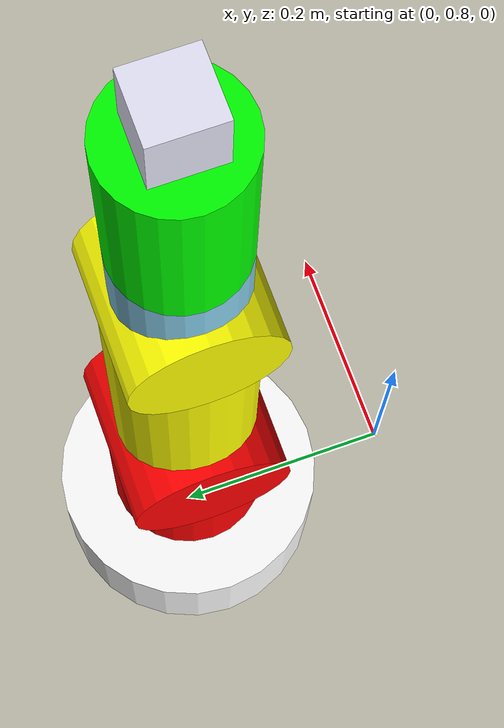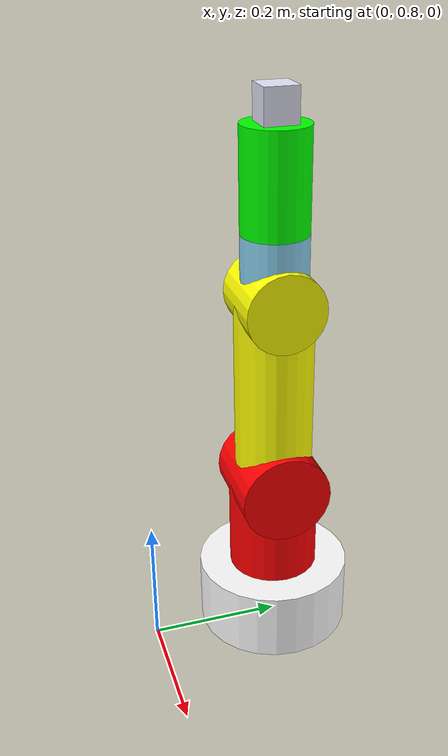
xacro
<?xml version="1.0"?>
<robot xmlns:xacro="http://www.ros.org/wiki/xacro">

    <xacro:include filename="inertial_macros.xacro" />

    <!-- Materials for Color -->
    <material name="white">
        <color rgba="1 1 1 1"/>
    </material>
    <material name="red">
        <color rgba="1 0 0 1"/>
    </material>
    <material name="yellow">
        <color rgba="1 1 0 1"/>
    </material>
    <material name="sky_blue">
        <color rgba="0.529 0.808 0.922 1"/>
    </material>
    <material name="green">
        <color rgba="0 1 0 1"/>
    </material>
    <material name="purple">
        <color rgba="0.902 0.902 0.980 1"/>
    </material>

    <!-- Configurable Values -->
    <!-- Base -->
    <xacro:property name="base_length" value="0.11" />
    <xacro:property name="base_radius" value="0.12" />
    <!-- Link1 -->
    <xacro:property name="shoulder_length" value="0.15" />
    <xacro:property name="shoulder_radius" value="0.07" />
    <!-- Link2 -->
    <xacro:property name="upperarm_length" value="0.3" />
    <xacro:property name="upperarm_radius" value="0.06" />
    <!-- Link3 -->
    <xacro:property name="elbow_length" value="0.1" />
    <xacro:property name="elbow_radius" value="0.05" />
    <!-- Link4 -->
    <xacro:property name="forearm_length" value="0.15" />
    <xacro:property name="forearm_radius" value="0.05" />
    <!-- Gripper -->
    <xacro:property name="gripper_length" value="0.05" />

    <!-- LINKS AND JOINTS START HERE -->
    <link name="world"></link>

    <joint name="base_joint" type="fixed">
        <parent link="world"/>
        <child link="base"/>
        <origin xyz="0 1 0" rpy="0 0 0"/>
    </joint>
    <link name="base">
        <visual>
            <origin xyz="0 0 ${base_length/2}" rpy="0 0 0"/>
            <geometry>
                <cylinder length="${base_length}" radius="${base_radius}"/>
            </geometry>
            <material name="white"/>
        </visual>
        <collision>
            <origin xyz="0 0 ${base_length/2}" rpy="0 0 0"/>
            <geometry>
                <cylinder length="${base_length}" radius="${base_radius}"/>
            </geometry>
        </collision>
        <xacro:inertial_cylinder mass="1" length="${base_length}" radius="${base_radius}">
            <origin xyz="0 0 ${base_length/2}" rpy="0 0 0"/>
        </xacro:inertial_cylinder>
    </link>
    <gazebo reference="base">
        <material>Gazebo/White</material>
    </gazebo>

    <joint name="shoulder_joint" type="revolute">
        <parent link="base"/>
        <child link="shoulder"/>
        <origin xyz="0 0 ${base_length}" rpy="0 0 0"/>
        <axis xyz="0 0 1"/>
        <limit lower="-1.570796326795" upper="1.570796326795" effort="100" velocity="0.5"/>
    </joint>
    <link name="shoulder">
        <visual>
            <origin xyz="0 0 ${shoulder_length/2}" rpy="0 0 0"/>
            <geometry>
                <cylinder length="${shoulder_length}" radius="${shoulder_radius}"/>
            </geometry>
            <material name="red"/>
        </visual>
        <visual>
            <origin xyz="0 0 ${shoulder_length}" rpy="0 -${pi/2} 0"/>
            <geometry>
                <cylinder length="${shoulder_radius*2}" radius="${shoulder_radius}"/>
            </geometry>
            <material name="red"/>
        </visual>

        <collision>
            <origin xyz="0 0 ${shoulder_length/2}" rpy="0 0 0"/>
            <geometry>
                <cylinder length="${shoulder_length}" radius="${shoulder_radius}"/>
            </geometry>
        </collision>
        <collision>
            <origin xyz="0 0 ${shoulder_length}" rpy="0 -${pi/2} 0"/>
            <geometry>
                <cylinder length="${shoulder_radius*2}" radius="${shoulder_radius}"/>
            </geometry>
        </collision>
        <xacro:inertial_cylinder mass="1" length="${shoulder_length}" radius="${shoulder_radius}">
            <origin xyz="0 0 ${shoulder_length/2}" rpy="0 0 0"/>
        </xacro:inertial_cylinder>
    </link>
    <gazebo reference="shoulder">
        <material>Gazebo/Red</material>
    </gazebo>

    <joint name="upperarm_joint" type="revolute">
        <parent link="shoulder"/>
        <child link="upperarm"/>
        <origin xyz="0 0 ${shoulder_length}" rpy="0 0 0"/>
        <axis xyz="1 0 0"/>
        <limit lower="-1.570796326795" upper="0.5235987755983333" effort="100" velocity="0.5"/>
    </joint>
    <link name="upperarm">
        <visual>
            <origin xyz="0 0 ${upperarm_length/2}" rpy="0 0 0"/>
            <geometry>
                <cylinder length="${upperarm_length}" radius="${upperarm_radius}"/>
            </geometry>
            <material name="yellow"/>
        </visual>
        <visual>
            <origin xyz="0 0 ${upperarm_length}" rpy="0 -${pi/2} 0"/>
            <geometry>
                <cylinder length="${upperarm_radius*2}" radius="${upperarm_radius}"/>
            </geometry>
            <material name="yellow"/>
        </visual>

        <collision>
            <origin xyz="0 0 ${upperarm_length/2}" rpy="0 0 0"/>
            <geometry>
                <cylinder length="${upperarm_length}" radius="${upperarm_radius}"/>
            </geometry>
        </collision>
        <collision>
            <origin xyz="0 0 ${upperarm_length}" rpy="0 -${pi/2} 0"/>
            <geometry>
                <cylinder length="${upperarm_radius*2}" radius="${upperarm_radius}"/>
            </geometry>
        </collision>

        <xacro:inertial_cylinder mass="1" length="${upperarm_length}" radius="${upperarm_radius}">
            <origin xyz="0 0 ${upperarm_length/2}" rpy="0 0 0"/>
        </xacro:inertial_cylinder>
    </link>
    <gazebo reference="upperarm">
        <material>Gazebo/Yellow</material>
    </gazebo>

    <joint name="elbow_joint" type="revolute">
        <parent link="upperarm"/>
        <child link="elbow"/>
        <origin xyz="0 0 ${upperarm_length}" rpy="0 0 0"/>
        <axis xyz="1 0 0"/>
        <limit lower="-1.570796326795" upper="0.5235987755983333" effort="100" velocity="0.5"/>
    </joint>
    <link name="elbow">
        <visual>
            <origin xyz="0 0 ${elbow_length/2}" rpy="0 0 0"/>
            <geometry>
                <cylinder length="${elbow_length}" radius="${elbow_radius}"/>
            </geometry>
            <material name="sky_blue"/>
        </visual>
        <collision>
            <origin xyz="0 0 ${elbow_length/2}" rpy="0 0 0"/>
            <geometry>
                <cylinder length="${elbow_length}" radius="${elbow_radius}"/>
            </geometry>
        </collision>
        <xacro:inertial_cylinder mass="1" length="${elbow_length}" radius="${elbow_radius}">
            <origin xyz="0 0 ${elbow_length/2}" rpy="0 0 0"/>
        </xacro:inertial_cylinder>
    </link>
    <gazebo reference="elbow">
        <material>Gazebo/SkyBlue</material>
    </gazebo>

    <joint name="forearm_joint" type="revolute">
        <parent link="elbow"/>
        <child link="forearm"/>
        <origin xyz="0 0 ${elbow_length}" rpy="0 0 0"/>
        <axis xyz="0 0 1"/>
        <limit lower="-3.14159265359" upper="3.14159265359" effort="100" velocity="0.5"/>
    </joint>
    <link name="forearm">
        <visual>
            <origin xyz="0 0 ${forearm_length/2}" rpy="0 0 0"/>
            <geometry>
                <cylinder length="${forearm_length}" radius="${forearm_radius}"/>
            </geometry>
            <material name="green"/>
        </visual>
        <collision>
            <origin xyz="0 0 ${forearm_length/2}" rpy="0 0 0"/>
            <geometry>
                <cylinder length="${forearm_length}" radius="${forearm_radius}"/>
            </geometry>
        </collision>
        <xacro:inertial_cylinder mass="1" length="${forearm_length}" radius="${forearm_radius}">
            <origin xyz="0 0 ${forearm_length/2}" rpy="0 0 0"/>
        </xacro:inertial_cylinder>
    </link>
    <gazebo reference="forearm">
        <material>Gazebo/Green</material>
    </gazebo>

    <joint name="gripper_joint" type="fixed">
        <parent link="forearm"/>
        <child link="gripper"/>
        <origin xyz="0 0 ${forearm_length}" rpy="0 0 0"/>
    </joint>
    <link name="gripper">
        <visual>
            <origin xyz="0 0 ${gripper_length/2}" rpy="0 0 0"/>
            <geometry>
                <box size="${gripper_length} ${gripper_length} ${gripper_length}"/>
            </geometry>
            <material name="purple"/>
        </visual>
        <collision>
            <origin xyz="0 0 ${gripper_length/2}" rpy="0 0 0"/>
            <geometry>
                <box size="${gripper_length} ${gripper_length} ${gripper_length}"/>
            </geometry>
        </collision>
        <xacro:inertial_box mass="1" x="${gripper_length}" y="${gripper_length}" z="${gripper_length}">
            <origin xyz="0 0 ${gripper_length/2}" rpy="0 0 0"/>
        </xacro:inertial_box>
    </link>
    <gazebo reference="gripper">
        <material>Gazebo/Purple</material>
    </gazebo>

</robot>
